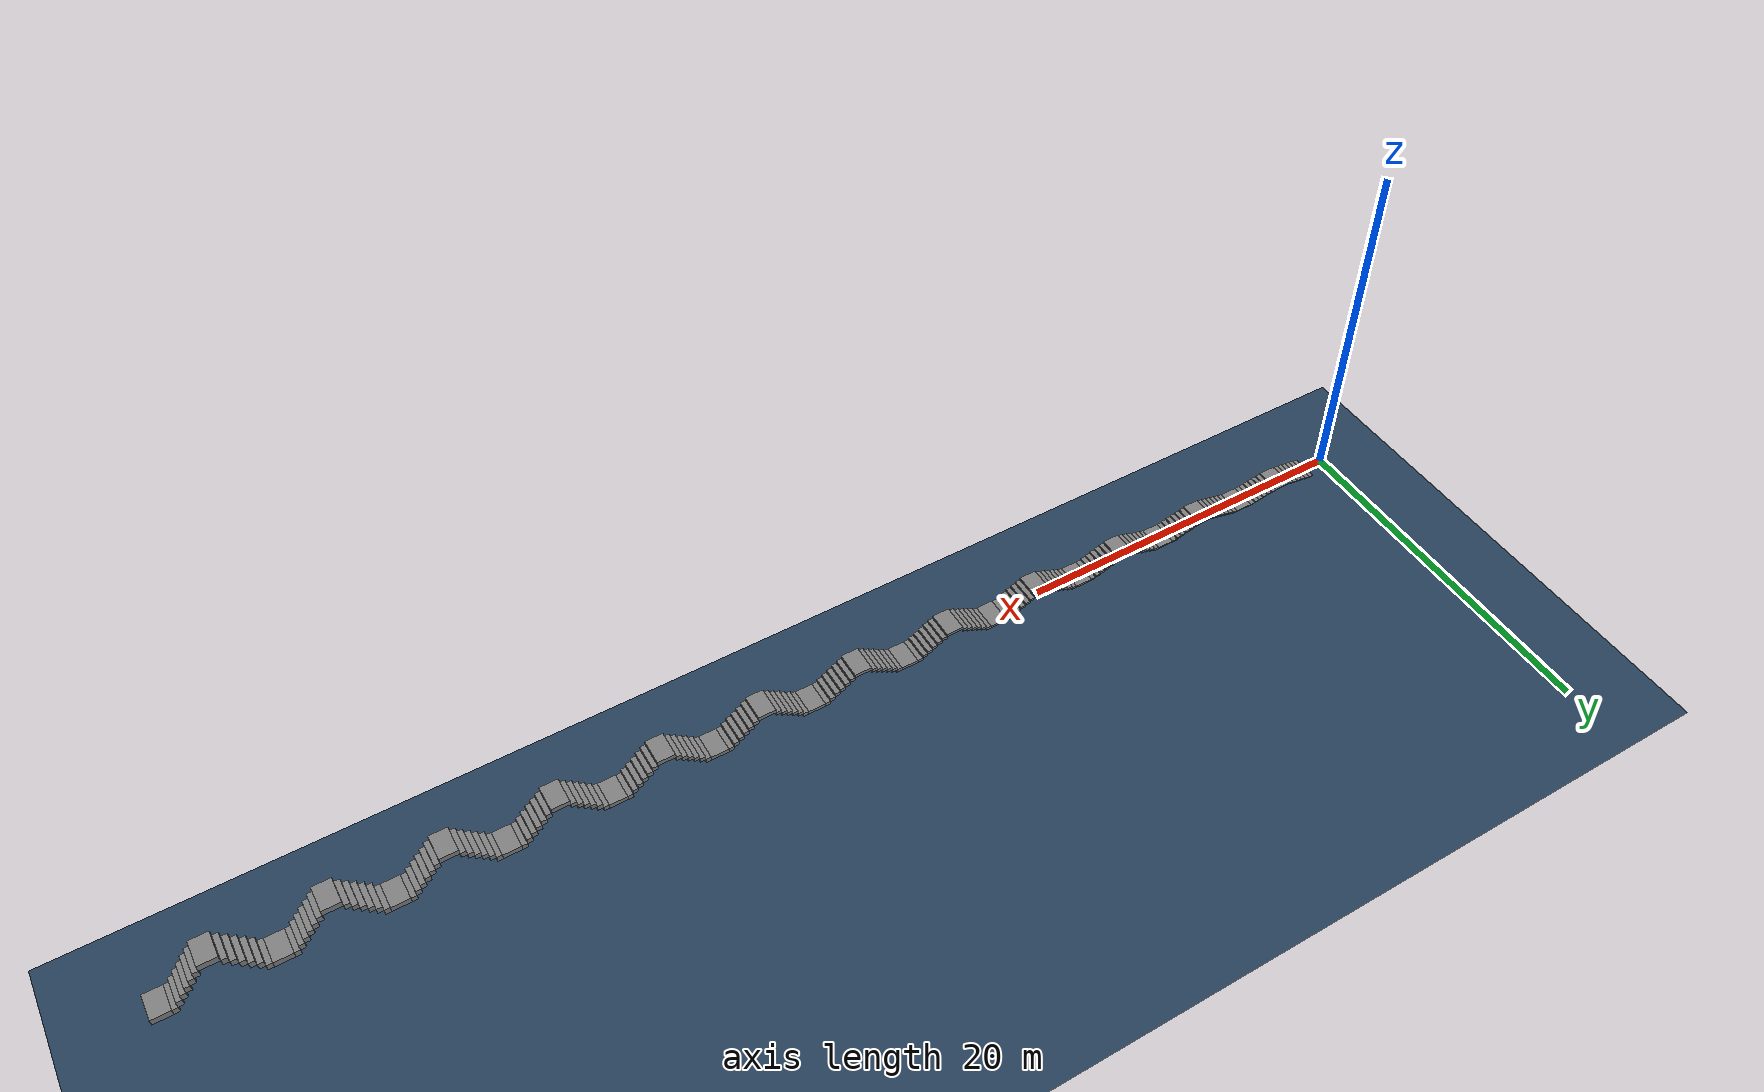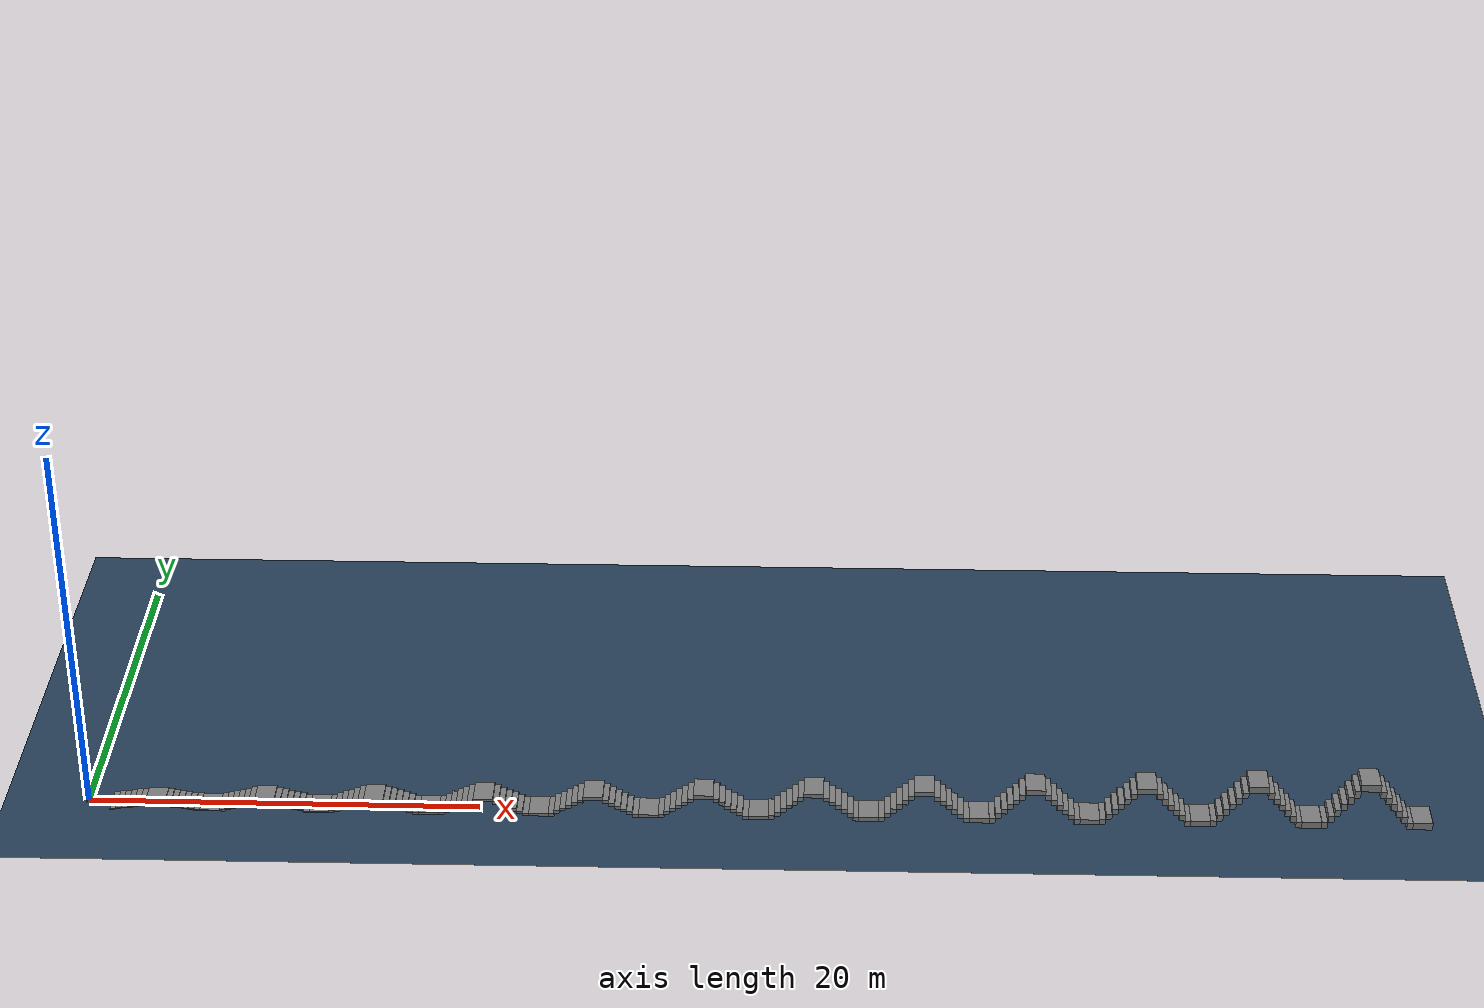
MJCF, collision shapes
<mujoco model="dog_502 scene">
  <include file="dog_502.xml"/>
  <!--Stairs series: Up 6, Down 6, Start height 0.050, Step inc 0.030, Max height 0.400. -->
  <statistic center="0 0 0.1" extent="0.8" />
  <visual>
    <headlight diffuse="0.6 0.6 0.6" ambient="0.3 0.3 0.3" specular="0 0 0" />
    <rgba haze="0.15 0.25 0.35 1" />
    <global azimuth="-130" elevation="-20" />
  </visual>
  <asset>
    <texture type="skybox" builtin="gradient" rgb1="0.3 0.5 0.7" rgb2="0 0 0" width="512" height="3072" />
    <texture type="2d" name="groundplane" builtin="checker" mark="edge" rgb1="0.2 0.3 0.4" rgb2="0.1 0.2 0.3" markrgb="0.8 0.8 0.8" width="300" height="300" />
    <material name="groundplane" texture="groundplane" texuniform="true" texrepeat="5 5" reflectance="0.0" />
  </asset>
  <worldbody>
    <light pos="0 0 1.5" dir="0 0 -1" directional="true" />
    <geom name="floor" size="0 0 0.05" type="plane" material="groundplane" />
    <geom pos="1.3 0.0 0.025" type="box" size="0.15 0.75 0.025" quat="1.0 0.0 0.0 0.0" />
    <geom pos="1.6 0.0 0.07500000000000001" type="box" size="0.15 0.75 0.025" quat="1.0 0.0 0.0 0.0" />
    <geom pos="1.9 0.0 0.125" type="box" size="0.15 0.75 0.025" quat="1.0 0.0 0.0 0.0" />
    <geom pos="2.2 0.0 0.17500000000000002" type="box" size="0.15 0.75 0.025" quat="1.0 0.0 0.0 0.0" />
    <geom pos="2.5 0.0 0.225" type="box" size="0.15 0.75 0.025" quat="1.0 0.0 0.0 0.0" />
    <geom pos="2.8 0.0 0.275" type="box" size="0.15 0.75 0.025" quat="1.0 0.0 0.0 0.0" />
    <geom pos="3.4499999999999997 0.0 0.32500000000000007" type="box" size="0.5 0.75 0.025" quat="1.0 0.0 0.0 0.0" />
    <geom pos="4.1 0.0 0.275" type="box" size="0.15 0.75 0.025" quat="1.0 0.0 0.0 0.0" />
    <geom pos="4.3999999999999995 0.0 0.22500000000000003" type="box" size="0.15 0.75 0.025" quat="1.0 0.0 0.0 0.0" />
    <geom pos="4.699999999999999 0.0 0.17500000000000002" type="box" size="0.15 0.75 0.025" quat="1.0 0.0 0.0 0.0" />
    <geom pos="5.0 0.0 0.125" type="box" size="0.15 0.75 0.025" quat="1.0 0.0 0.0 0.0" />
    <geom pos="5.3 0.0 0.07500000000000001" type="box" size="0.15 0.75 0.025" quat="1.0 0.0 0.0 0.0" />
    <geom pos="5.6 0.0 0.025000000000000022" type="box" size="0.15 0.75 0.025" quat="1.0 0.0 0.0 0.0" />
    <geom pos="6.25 0.0 0.025" type="box" size="0.5 0.75 0.025" quat="1.0 0.0 0.0 0.0" />
    <geom pos="6.898999999999999 0.0 0.04" type="box" size="0.15 0.75 0.04" quat="1.0 0.0 0.0 0.0" />
    <geom pos="7.198999999999999 0.0 0.12" type="box" size="0.15 0.75 0.04" quat="1.0 0.0 0.0 0.0" />
    <geom pos="7.498999999999999 0.0 0.2" type="box" size="0.15 0.75 0.04" quat="1.0 0.0 0.0 0.0" />
    <geom pos="7.7989999999999995 0.0 0.28" type="box" size="0.15 0.75 0.04" quat="1.0 0.0 0.0 0.0" />
    <geom pos="8.099 0.0 0.36" type="box" size="0.15 0.75 0.04" quat="1.0 0.0 0.0 0.0" />
    <geom pos="8.399 0.0 0.44" type="box" size="0.15 0.75 0.04" quat="1.0 0.0 0.0 0.0" />
    <geom pos="9.049 0.0 0.52" type="box" size="0.5 0.75 0.04" quat="1.0 0.0 0.0 0.0" />
    <geom pos="9.698999999999998 0.0 0.44" type="box" size="0.15 0.75 0.04" quat="1.0 0.0 0.0 0.0" />
    <geom pos="9.998999999999999 0.0 0.36" type="box" size="0.15 0.75 0.04" quat="1.0 0.0 0.0 0.0" />
    <geom pos="10.299 0.0 0.28" type="box" size="0.15 0.75 0.04" quat="1.0 0.0 0.0 0.0" />
    <geom pos="10.598999999999998 0.0 0.2" type="box" size="0.15 0.75 0.04" quat="1.0 0.0 0.0 0.0" />
    <geom pos="10.899 0.0 0.12" type="box" size="0.15 0.75 0.04" quat="1.0 0.0 0.0 0.0" />
    <geom pos="11.198999999999998 0.0 0.03999999999999998" type="box" size="0.15 0.75 0.04" quat="1.0 0.0 0.0 0.0" />
    <geom pos="11.849 0.0 0.04" type="box" size="0.5 0.75 0.04" quat="1.0 0.0 0.0 0.0" />
    <geom pos="12.498 0.0 0.055" type="box" size="0.15 0.75 0.055" quat="1.0 0.0 0.0 0.0" />
    <geom pos="12.797999999999998 0.0 0.165" type="box" size="0.15 0.75 0.055" quat="1.0 0.0 0.0 0.0" />
    <geom pos="13.097999999999999 0.0 0.275" type="box" size="0.15 0.75 0.055" quat="1.0 0.0 0.0 0.0" />
    <geom pos="13.397999999999998 0.0 0.385" type="box" size="0.15 0.75 0.055" quat="1.0 0.0 0.0 0.0" />
    <geom pos="13.697999999999999 0.0 0.495" type="box" size="0.15 0.75 0.055" quat="1.0 0.0 0.0 0.0" />
    <geom pos="13.997999999999998 0.0 0.605" type="box" size="0.15 0.75 0.055" quat="1.0 0.0 0.0 0.0" />
    <geom pos="14.647999999999998 0.0 0.7150000000000001" type="box" size="0.5 0.75 0.055" quat="1.0 0.0 0.0 0.0" />
    <geom pos="15.297999999999998 0.0 0.605" type="box" size="0.15 0.75 0.055" quat="1.0 0.0 0.0 0.0" />
    <geom pos="15.597999999999999 0.0 0.495" type="box" size="0.15 0.75 0.055" quat="1.0 0.0 0.0 0.0" />
    <geom pos="15.897999999999998 0.0 0.385" type="box" size="0.15 0.75 0.055" quat="1.0 0.0 0.0 0.0" />
    <geom pos="16.197999999999997 0.0 0.27499999999999997" type="box" size="0.15 0.75 0.055" quat="1.0 0.0 0.0 0.0" />
    <geom pos="16.497999999999998 0.0 0.16499999999999998" type="box" size="0.15 0.75 0.055" quat="1.0 0.0 0.0 0.0" />
    <geom pos="16.798 0.0 0.05499999999999994" type="box" size="0.15 0.75 0.055" quat="1.0 0.0 0.0 0.0" />
    <geom pos="17.448 0.0 0.055" type="box" size="0.5 0.75 0.055" quat="1.0 0.0 0.0 0.0" />
    <geom pos="18.096999999999998 0.0 0.07" type="box" size="0.15 0.75 0.07" quat="1.0 0.0 0.0 0.0" />
    <geom pos="18.397 0.0 0.21000000000000002" type="box" size="0.15 0.75 0.07" quat="1.0 0.0 0.0 0.0" />
    <geom pos="18.696999999999996 0.0 0.35000000000000003" type="box" size="0.15 0.75 0.07" quat="1.0 0.0 0.0 0.0" />
    <geom pos="18.996999999999996 0.0 0.49000000000000005" type="box" size="0.15 0.75 0.07" quat="1.0 0.0 0.0 0.0" />
    <geom pos="19.296999999999997 0.0 0.6300000000000001" type="box" size="0.15 0.75 0.07" quat="1.0 0.0 0.0 0.0" />
    <geom pos="19.596999999999998 0.0 0.77" type="box" size="0.15 0.75 0.07" quat="1.0 0.0 0.0 0.0" />
    <geom pos="20.246999999999996 0.0 0.9100000000000001" type="box" size="0.5 0.75 0.07" quat="1.0 0.0 0.0 0.0" />
    <geom pos="20.897 0.0 0.77" type="box" size="0.15 0.75 0.07" quat="1.0 0.0 0.0 0.0" />
    <geom pos="21.196999999999996 0.0 0.63" type="box" size="0.15 0.75 0.07" quat="1.0 0.0 0.0 0.0" />
    <geom pos="21.496999999999996 0.0 0.49" type="box" size="0.15 0.75 0.07" quat="1.0 0.0 0.0 0.0" />
    <geom pos="21.796999999999997 0.0 0.35" type="box" size="0.15 0.75 0.07" quat="1.0 0.0 0.0 0.0" />
    <geom pos="22.096999999999998 0.0 0.20999999999999996" type="box" size="0.15 0.75 0.07" quat="1.0 0.0 0.0 0.0" />
    <geom pos="22.397 0.0 0.06999999999999995" type="box" size="0.15 0.75 0.07" quat="1.0 0.0 0.0 0.0" />
    <geom pos="23.046999999999997 0.0 0.07" type="box" size="0.5 0.75 0.07" quat="1.0 0.0 0.0 0.0" />
    <geom pos="23.695999999999998 0.0 0.085" type="box" size="0.15 0.75 0.085" quat="1.0 0.0 0.0 0.0" />
    <geom pos="23.996 0.0 0.255" type="box" size="0.15 0.75 0.085" quat="1.0 0.0 0.0 0.0" />
    <geom pos="24.295999999999996 0.0 0.42500000000000004" type="box" size="0.15 0.75 0.085" quat="1.0 0.0 0.0 0.0" />
    <geom pos="24.595999999999997 0.0 0.5950000000000001" type="box" size="0.15 0.75 0.085" quat="1.0 0.0 0.0 0.0" />
    <geom pos="24.895999999999997 0.0 0.765" type="box" size="0.15 0.75 0.085" quat="1.0 0.0 0.0 0.0" />
    <geom pos="25.195999999999998 0.0 0.935" type="box" size="0.15 0.75 0.085" quat="1.0 0.0 0.0 0.0" />
    <geom pos="25.845999999999997 0.0 1.105" type="box" size="0.5 0.75 0.085" quat="1.0 0.0 0.0 0.0" />
    <geom pos="26.495999999999995 0.0 0.935" type="box" size="0.15 0.75 0.085" quat="1.0 0.0 0.0 0.0" />
    <geom pos="26.795999999999996 0.0 0.765" type="box" size="0.15 0.75 0.085" quat="1.0 0.0 0.0 0.0" />
    <geom pos="27.095999999999997 0.0 0.595" type="box" size="0.15 0.75 0.085" quat="1.0 0.0 0.0 0.0" />
    <geom pos="27.395999999999997 0.0 0.42500000000000004" type="box" size="0.15 0.75 0.085" quat="1.0 0.0 0.0 0.0" />
    <geom pos="27.695999999999998 0.0 0.255" type="box" size="0.15 0.75 0.085" quat="1.0 0.0 0.0 0.0" />
    <geom pos="27.995999999999995 0.0 0.08499999999999996" type="box" size="0.15 0.75 0.085" quat="1.0 0.0 0.0 0.0" />
    <geom pos="28.645999999999997 0.0 0.085" type="box" size="0.5 0.75 0.085" quat="1.0 0.0 0.0 0.0" />
    <geom pos="29.294999999999998 0.0 0.1" type="box" size="0.15 0.75 0.1" quat="1.0 0.0 0.0 0.0" />
    <geom pos="29.595 0.0 0.30000000000000004" type="box" size="0.15 0.75 0.1" quat="1.0 0.0 0.0 0.0" />
    <geom pos="29.894999999999996 0.0 0.5" type="box" size="0.15 0.75 0.1" quat="1.0 0.0 0.0 0.0" />
    <geom pos="30.194999999999997 0.0 0.7000000000000001" type="box" size="0.15 0.75 0.1" quat="1.0 0.0 0.0 0.0" />
    <geom pos="30.494999999999997 0.0 0.9" type="box" size="0.15 0.75 0.1" quat="1.0 0.0 0.0 0.0" />
    <geom pos="30.794999999999998 0.0 1.1" type="box" size="0.15 0.75 0.1" quat="1.0 0.0 0.0 0.0" />
    <geom pos="31.444999999999997 0.0 1.3000000000000003" type="box" size="0.5 0.75 0.1" quat="1.0 0.0 0.0 0.0" />
    <geom pos="32.095 0.0 1.1" type="box" size="0.15 0.75 0.1" quat="1.0 0.0 0.0 0.0" />
    <geom pos="32.394999999999996 0.0 0.9000000000000001" type="box" size="0.15 0.75 0.1" quat="1.0 0.0 0.0 0.0" />
    <geom pos="32.695 0.0 0.7000000000000001" type="box" size="0.15 0.75 0.1" quat="1.0 0.0 0.0 0.0" />
    <geom pos="32.995 0.0 0.5" type="box" size="0.15 0.75 0.1" quat="1.0 0.0 0.0 0.0" />
    <geom pos="33.294999999999995 0.0 0.30000000000000004" type="box" size="0.15 0.75 0.1" quat="1.0 0.0 0.0 0.0" />
    <geom pos="33.595 0.0 0.10000000000000009" type="box" size="0.15 0.75 0.1" quat="1.0 0.0 0.0 0.0" />
    <geom pos="34.245 0.0 0.1" type="box" size="0.5 0.75 0.1" quat="1.0 0.0 0.0 0.0" />
    <geom pos="34.89399999999999 0.0 0.115" type="box" size="0.15 0.75 0.115" quat="1.0 0.0 0.0 0.0" />
    <geom pos="35.193999999999996 0.0 0.34500000000000003" type="box" size="0.15 0.75 0.115" quat="1.0 0.0 0.0 0.0" />
    <geom pos="35.49399999999999 0.0 0.5750000000000001" type="box" size="0.15 0.75 0.115" quat="1.0 0.0 0.0 0.0" />
    <geom pos="35.794 0.0 0.805" type="box" size="0.15 0.75 0.115" quat="1.0 0.0 0.0 0.0" />
    <geom pos="36.093999999999994 0.0 1.0350000000000001" type="box" size="0.15 0.75 0.115" quat="1.0 0.0 0.0 0.0" />
    <geom pos="36.39399999999999 0.0 1.2650000000000001" type="box" size="0.15 0.75 0.115" quat="1.0 0.0 0.0 0.0" />
    <geom pos="37.044 0.0 1.495" type="box" size="0.5 0.75 0.115" quat="1.0 0.0 0.0 0.0" />
    <geom pos="37.693999999999996 0.0 1.2650000000000001" type="box" size="0.15 0.75 0.115" quat="1.0 0.0 0.0 0.0" />
    <geom pos="37.99399999999999 0.0 1.0350000000000001" type="box" size="0.15 0.75 0.115" quat="1.0 0.0 0.0 0.0" />
    <geom pos="38.294 0.0 0.8050000000000002" type="box" size="0.15 0.75 0.115" quat="1.0 0.0 0.0 0.0" />
    <geom pos="38.593999999999994 0.0 0.5750000000000001" type="box" size="0.15 0.75 0.115" quat="1.0 0.0 0.0 0.0" />
    <geom pos="38.89399999999999 0.0 0.3450000000000001" type="box" size="0.15 0.75 0.115" quat="1.0 0.0 0.0 0.0" />
    <geom pos="39.193999999999996 0.0 0.11499999999999999" type="box" size="0.15 0.75 0.115" quat="1.0 0.0 0.0 0.0" />
    <geom pos="39.843999999999994 0.0 0.115" type="box" size="0.5 0.75 0.115" quat="1.0 0.0 0.0 0.0" />
    <geom pos="40.49299999999999 0.0 0.13" type="box" size="0.15 0.75 0.13" quat="1.0 0.0 0.0 0.0" />
    <geom pos="40.79299999999999 0.0 0.39" type="box" size="0.15 0.75 0.13" quat="1.0 0.0 0.0 0.0" />
    <geom pos="41.09299999999999 0.0 0.65" type="box" size="0.15 0.75 0.13" quat="1.0 0.0 0.0 0.0" />
    <geom pos="41.392999999999994 0.0 0.91" type="box" size="0.15 0.75 0.13" quat="1.0 0.0 0.0 0.0" />
    <geom pos="41.69299999999999 0.0 1.17" type="box" size="0.15 0.75 0.13" quat="1.0 0.0 0.0 0.0" />
    <geom pos="41.99299999999999 0.0 1.4300000000000002" type="box" size="0.15 0.75 0.13" quat="1.0 0.0 0.0 0.0" />
    <geom pos="42.642999999999994 0.0 1.69" type="box" size="0.5 0.75 0.13" quat="1.0 0.0 0.0 0.0" />
    <geom pos="43.29299999999999 0.0 1.4300000000000002" type="box" size="0.15 0.75 0.13" quat="1.0 0.0 0.0 0.0" />
    <geom pos="43.59299999999999 0.0 1.1700000000000002" type="box" size="0.15 0.75 0.13" quat="1.0 0.0 0.0 0.0" />
    <geom pos="43.892999999999994 0.0 0.9100000000000001" type="box" size="0.15 0.75 0.13" quat="1.0 0.0 0.0 0.0" />
    <geom pos="44.19299999999999 0.0 0.6500000000000001" type="box" size="0.15 0.75 0.13" quat="1.0 0.0 0.0 0.0" />
    <geom pos="44.49299999999999 0.0 0.3900000000000001" type="box" size="0.15 0.75 0.13" quat="1.0 0.0 0.0 0.0" />
    <geom pos="44.79299999999999 0.0 0.13000000000000012" type="box" size="0.15 0.75 0.13" quat="1.0 0.0 0.0 0.0" />
    <geom pos="45.44299999999999 0.0 0.13" type="box" size="0.5 0.75 0.13" quat="1.0 0.0 0.0 0.0" />
    <geom pos="46.091999999999985 0.0 0.145" type="box" size="0.15 0.75 0.145" quat="1.0 0.0 0.0 0.0" />
    <geom pos="46.39199999999999 0.0 0.43499999999999994" type="box" size="0.15 0.75 0.145" quat="1.0 0.0 0.0 0.0" />
    <geom pos="46.691999999999986 0.0 0.725" type="box" size="0.15 0.75 0.145" quat="1.0 0.0 0.0 0.0" />
    <geom pos="46.99199999999999 0.0 1.015" type="box" size="0.15 0.75 0.145" quat="1.0 0.0 0.0 0.0" />
    <geom pos="47.29199999999999 0.0 1.305" type="box" size="0.15 0.75 0.145" quat="1.0 0.0 0.0 0.0" />
    <geom pos="47.591999999999985 0.0 1.595" type="box" size="0.15 0.75 0.145" quat="1.0 0.0 0.0 0.0" />
    <geom pos="48.24199999999999 0.0 1.8849999999999998" type="box" size="0.5 0.75 0.145" quat="1.0 0.0 0.0 0.0" />
    <geom pos="48.89199999999999 0.0 1.5949999999999998" type="box" size="0.15 0.75 0.145" quat="1.0 0.0 0.0 0.0" />
    <geom pos="49.191999999999986 0.0 1.3049999999999997" type="box" size="0.15 0.75 0.145" quat="1.0 0.0 0.0 0.0" />
    <geom pos="49.49199999999999 0.0 1.0149999999999997" type="box" size="0.15 0.75 0.145" quat="1.0 0.0 0.0 0.0" />
    <geom pos="49.79199999999999 0.0 0.7249999999999999" type="box" size="0.15 0.75 0.145" quat="1.0 0.0 0.0 0.0" />
    <geom pos="50.091999999999985 0.0 0.43499999999999983" type="box" size="0.15 0.75 0.145" quat="1.0 0.0 0.0 0.0" />
    <geom pos="50.39199999999999 0.0 0.1449999999999998" type="box" size="0.15 0.75 0.145" quat="1.0 0.0 0.0 0.0" />
    <geom pos="51.04199999999999 0.0 0.145" type="box" size="0.5 0.75 0.145" quat="1.0 0.0 0.0 0.0" />
    <geom pos="51.69099999999998 0.0 0.16" type="box" size="0.15 0.75 0.16" quat="1.0 0.0 0.0 0.0" />
    <geom pos="51.990999999999985 0.0 0.48" type="box" size="0.15 0.75 0.16" quat="1.0 0.0 0.0 0.0" />
    <geom pos="52.29099999999998 0.0 0.8" type="box" size="0.15 0.75 0.16" quat="1.0 0.0 0.0 0.0" />
    <geom pos="52.59099999999999 0.0 1.12" type="box" size="0.15 0.75 0.16" quat="1.0 0.0 0.0 0.0" />
    <geom pos="52.890999999999984 0.0 1.44" type="box" size="0.15 0.75 0.16" quat="1.0 0.0 0.0 0.0" />
    <geom pos="53.19099999999998 0.0 1.76" type="box" size="0.15 0.75 0.16" quat="1.0 0.0 0.0 0.0" />
    <geom pos="53.84099999999999 0.0 2.08" type="box" size="0.5 0.75 0.16" quat="1.0 0.0 0.0 0.0" />
    <geom pos="54.490999999999985 0.0 1.76" type="box" size="0.15 0.75 0.16" quat="1.0 0.0 0.0 0.0" />
    <geom pos="54.79099999999998 0.0 1.44" type="box" size="0.15 0.75 0.16" quat="1.0 0.0 0.0 0.0" />
    <geom pos="55.09099999999999 0.0 1.12" type="box" size="0.15 0.75 0.16" quat="1.0 0.0 0.0 0.0" />
    <geom pos="55.390999999999984 0.0 0.8" type="box" size="0.15 0.75 0.16" quat="1.0 0.0 0.0 0.0" />
    <geom pos="55.69099999999998 0.0 0.48" type="box" size="0.15 0.75 0.16" quat="1.0 0.0 0.0 0.0" />
    <geom pos="55.990999999999985 0.0 0.15999999999999992" type="box" size="0.15 0.75 0.16" quat="1.0 0.0 0.0 0.0" />
    <geom pos="56.640999999999984 0.0 0.16" type="box" size="0.5 0.75 0.16" quat="1.0 0.0 0.0 0.0" />
    <geom pos="57.28999999999998 0.0 0.175" type="box" size="0.15 0.75 0.175" quat="1.0 0.0 0.0 0.0" />
    <geom pos="57.58999999999998 0.0 0.5249999999999999" type="box" size="0.15 0.75 0.175" quat="1.0 0.0 0.0 0.0" />
    <geom pos="57.88999999999998 0.0 0.875" type="box" size="0.15 0.75 0.175" quat="1.0 0.0 0.0 0.0" />
    <geom pos="58.18999999999998 0.0 1.2249999999999999" type="box" size="0.15 0.75 0.175" quat="1.0 0.0 0.0 0.0" />
    <geom pos="58.48999999999998 0.0 1.575" type="box" size="0.15 0.75 0.175" quat="1.0 0.0 0.0 0.0" />
    <geom pos="58.78999999999998 0.0 1.9249999999999998" type="box" size="0.15 0.75 0.175" quat="1.0 0.0 0.0 0.0" />
    <geom pos="59.43999999999998 0.0 2.2749999999999995" type="box" size="0.5 0.75 0.175" quat="1.0 0.0 0.0 0.0" />
    <geom pos="60.08999999999998 0.0 1.9249999999999996" type="box" size="0.15 0.75 0.175" quat="1.0 0.0 0.0 0.0" />
    <geom pos="60.38999999999998 0.0 1.5749999999999997" type="box" size="0.15 0.75 0.175" quat="1.0 0.0 0.0 0.0" />
    <geom pos="60.68999999999998 0.0 1.2249999999999996" type="box" size="0.15 0.75 0.175" quat="1.0 0.0 0.0 0.0" />
    <geom pos="60.98999999999998 0.0 0.8749999999999998" type="box" size="0.15 0.75 0.175" quat="1.0 0.0 0.0 0.0" />
    <geom pos="61.28999999999998 0.0 0.5249999999999997" type="box" size="0.15 0.75 0.175" quat="1.0 0.0 0.0 0.0" />
    <geom pos="61.58999999999998 0.0 0.1749999999999996" type="box" size="0.15 0.75 0.175" quat="1.0 0.0 0.0 0.0" />
    <geom pos="62.23999999999998 0.0 0.175" type="box" size="0.5 0.75 0.175" quat="1.0 0.0 0.0 0.0" />
    <geom pos="62.888999999999974 0.0 0.19" type="box" size="0.15 0.75 0.19" quat="1.0 0.0 0.0 0.0" />
    <geom pos="63.18899999999998 0.0 0.5700000000000001" type="box" size="0.15 0.75 0.19" quat="1.0 0.0 0.0 0.0" />
    <geom pos="63.488999999999976 0.0 0.95" type="box" size="0.15 0.75 0.19" quat="1.0 0.0 0.0 0.0" />
    <geom pos="63.78899999999998 0.0 1.33" type="box" size="0.15 0.75 0.19" quat="1.0 0.0 0.0 0.0" />
    <geom pos="64.08899999999997 0.0 1.71" type="box" size="0.15 0.75 0.19" quat="1.0 0.0 0.0 0.0" />
    <geom pos="64.38899999999998 0.0 2.09" type="box" size="0.15 0.75 0.19" quat="1.0 0.0 0.0 0.0" />
    <geom pos="65.03899999999997 0.0 2.47" type="box" size="0.5 0.75 0.19" quat="1.0 0.0 0.0 0.0" />
    <geom pos="65.68899999999998 0.0 2.0900000000000003" type="box" size="0.15 0.75 0.19" quat="1.0 0.0 0.0 0.0" />
    <geom pos="65.98899999999998 0.0 1.7100000000000004" type="box" size="0.15 0.75 0.19" quat="1.0 0.0 0.0 0.0" />
    <geom pos="66.28899999999997 0.0 1.3300000000000003" type="box" size="0.15 0.75 0.19" quat="1.0 0.0 0.0 0.0" />
    <geom pos="66.58899999999997 0.0 0.9500000000000002" type="box" size="0.15 0.75 0.19" quat="1.0 0.0 0.0 0.0" />
    <geom pos="66.88899999999998 0.0 0.5700000000000003" type="box" size="0.15 0.75 0.19" quat="1.0 0.0 0.0 0.0" />
    <geom pos="67.18899999999998 0.0 0.1900000000000004" type="box" size="0.15 0.75 0.19" quat="1.0 0.0 0.0 0.0" />
    <geom pos="67.83899999999997 0.0 0.19" type="box" size="0.5 0.75 0.19" quat="1.0 0.0 0.0 0.0" />
  </worldbody>
</mujoco>

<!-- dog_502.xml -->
<mujoco model="dog_502_description">
  <compiler angle="radian" meshdir="../../../dog_502_description/meshes"/>

  <default>
    <joint damping="0.01" armature="0.01" frictionloss="0.02"/>
    <geom condim="3" friction="0.8 0.02 0.01"/>
    <default class="visual">
      <geom type="mesh" contype="0" conaffinity="0" group="2"/>
    </default>
  </default>

  <asset>
    <material name="light_grey" rgba="0.75294 0.75294 0.75294 1"/>
    <material name="black" rgba="0.1 0.1 0.1 1"/>
    <material name="red" rgba="1.0 0.0 0.0 1"/>

    <mesh name="base_link_mesh" file="base_link.STL"/>
    <mesh name="FL_hip_mesh" file="FL_hip.STL"/>
    <mesh name="FR_hip_mesh" file="FR_hip.STL"/>
    <mesh name="RL_hip_mesh" file="RL_hip.STL"/>
    <mesh name="RR_hip_mesh" file="RR_hip.STL"/>
    <mesh name="FL_thigh_mesh" file="FL_thigh.STL"/>
    <mesh name="FR_thigh_mesh" file="FR_thigh.STL"/>
    <mesh name="RL_thigh_mesh" file="RL_thigh.STL"/>
    <mesh name="RR_thigh_mesh" file="RR_thigh.STL"/>
    <mesh name="FL_calf_mesh" file="FL_calf.STL"/>
    <mesh name="FR_calf_mesh" file="FR_calf.STL"/>
    <mesh name="RL_calf_mesh" file="RL_calf.STL"/>
    <mesh name="RR_calf_mesh" file="RR_calf.STL"/>
  </asset>

  <worldbody>
    <body name="base" pos="0 0 0.31">
      <inertial pos="0.000037 0.001297 -0.002295" mass="4.142449" diaginertia="0.013374 0.031506 0.039388"/>
      <freejoint name="root"/>
      <geom mesh="base_link_mesh" material="light_grey" class="visual"/>
      <geom name="base_collision" type="box" size="0.15 0.075 0.04"/>

      <body name="camera" pos="0.255 0 0.04185" quat="0.984811 0 0.173672 0">
        <geom name="camera_visual" type="box" size="0.0125 0.06 0.0145" material="black" contype="0" conaffinity="0" group="2"/>
      </body>

      <body name="FL_hip" pos="0.1767 0.05 0">
        <inertial pos="-0.00457081 -0.00969999 0.0002578" mass="0.50149755" diaginertia="0.00011158 0.00021376 0.00016301"/>
        <joint name="FL_hip_joint" axis="1 0 0" range="-0.837758 0.837758" actuatorfrcrange="-17 17"/>
        <geom mesh="FL_hip_mesh" material="light_grey" class="visual"/>
        <geom name="FL_hip_collision" type="box" size="0.025 0.04 0.03"/>
        <body name="FL_thigh" pos="0 0.0684 0">
          <inertial pos="-0.00194747 -0.02547458 -0.01388663" mass="0.64867804" diaginertia="0.00138293 0.00137329 0.00032193"/>
          <joint name="FL_thigh_joint" axis="0 1 0" range="-1.5708 3.49066" actuatorfrcrange="-17 17"/>
          <geom mesh="FL_thigh_mesh" material="light_grey" class="visual"/>
          <geom name="FL_thigh_collision" type="box" pos="0 0 -0.09" quat="0.707107 0 0.707107 0" size="0.09 0.015 0.0175"/>
          <body name="FL_calf" pos="0 0 -0.18">
            <inertial pos="0.01310003 -0.00009903 -0.09935467" mass="0.06024443" diaginertia="0.0003599 0.00036988 0.00001166"/>
            <joint name="FL_calf_joint" axis="0 1 0" range="-2.72271 -0.837758" actuatorfrcrange="-17 17"/>
            <geom mesh="FL_calf_mesh" material="light_grey" class="visual"/>
            <geom name="FL_calf_collision_0" type="box" pos="0.013 0 -0.053" quat="0.988392 0 -0.151909 0" size="0.00825 0.0075 0.05106"/>
            <geom name="FL_calf_collision_1" type="box" pos="0.0285 0 -0.119" quat="0.997889 0 -0.064954 0" size="0.009 0.0075 0.03"/>
            <geom name="FL_calf_collision_2" type="box" pos="0.02021 0 -0.15878" quat="0.968912 0 0.247404 0" size="0.0125 0.0075 0.02"/>
            <geom name="FL_calf_collision_3" type="box" pos="0.03 0 -0.16" quat="0.998750 0 0.049979 0" size="0.01 0.0075 0.015"/>
            <body name="FL_foot" pos="0 0 -0.18">
              <inertial pos="0 0 0" mass="0.04" diaginertia="0.0000096 0.0000096 0.0000096"/>
              <geom name="FL_foot_visual" type="sphere" size="0.01" material="red" contype="0" conaffinity="0" group="2"/>
              <geom name="FL_foot_collision" type="sphere" pos="0.015 0 0" size="0.0225"/>
            </body>
          </body>
        </body>
      </body>

      <body name="FR_hip" pos="0.1767 -0.05 0">
        <inertial pos="-0.00444412 0.00969999 0.00054368" mass="0.50149755" diaginertia="0.00011122 0.00021421 0.00016383"/>
        <joint name="FR_hip_joint" axis="1 0 0" range="-0.837758 0.837758" actuatorfrcrange="-17 17"/>
        <geom mesh="FR_hip_mesh" material="light_grey" class="visual"/>
        <geom name="FR_hip_collision" type="box" size="0.025 0.04 0.03"/>
        <body name="FR_thigh" pos="0 -0.0684 0">
          <inertial pos="-0.00096707 0.02548196 -0.01388686" mass="0.64867934" diaginertia="0.00138275 0.00137516 0.00032358"/>
          <joint name="FR_thigh_joint" axis="0 1 0" range="-1.5708 3.49066" actuatorfrcrange="-17 17"/>
          <geom mesh="FR_thigh_mesh" material="light_grey" class="visual"/>
          <geom name="FR_thigh_collision" type="box" pos="0 0 -0.09" quat="0.707107 0 0.707107 0" size="0.09 0.015 0.0175"/>
          <body name="FR_calf" pos="0 0 -0.18">
            <inertial pos="0.01310003 0.00010097 -0.09935467" mass="0.06024443" diaginertia="0.0003599 0.00036988 0.00001166"/>
            <joint name="FR_calf_joint" axis="0 1 0" range="-2.72271 -0.837758" actuatorfrcrange="-17 17"/>
            <geom mesh="FR_calf_mesh" material="light_grey" class="visual"/>
            <geom name="FR_calf_collision_0" type="box" pos="0.013 0 -0.053" quat="0.988392 0 -0.151909 0" size="0.00825 0.0075 0.05106"/>
            <geom name="FR_calf_collision_1" type="box" pos="0.0285 0 -0.119" quat="0.997889 0 -0.064954 0" size="0.009 0.0075 0.03"/>
            <geom name="FR_calf_collision_2" type="box" pos="0.02021 0 -0.15878" quat="0.968912 0 0.247404 0" size="0.0125 0.0075 0.02"/>
            <geom name="FR_calf_collision_3" type="box" pos="0.03 0 -0.16" quat="0.998750 0 0.049979 0" size="0.01 0.0075 0.015"/>
            <body name="FR_foot" pos="0 0 -0.18">
              <inertial pos="0 0 0" mass="0.04" diaginertia="0.0000096 0.0000096 0.0000096"/>
              <geom name="FR_foot_visual" type="sphere" size="0.01" material="red" contype="0" conaffinity="0" group="2"/>
              <geom name="FR_foot_collision" type="sphere" pos="0.015 0 0" size="0.0225"/>
            </body>
          </body>
        </body>
      </body>

      <body name="RL_hip" pos="-0.1767 0.05 0">
        <inertial pos="0.00329874 -0.00969999 0.00094432" mass="0.50149755" diaginertia="0.00011271 0.00021836 0.00016649"/>
        <joint name="RL_hip_joint" axis="1 0 0" range="-0.837758 0.837758" actuatorfrcrange="-17 17"/>
        <geom mesh="RL_hip_mesh" material="light_grey" class="visual"/>
        <geom name="RL_hip_collision" type="box" size="0.025 0.04 0.03"/>
        <body name="RL_thigh" pos="0 0.0684 0">
          <inertial pos="-0.00120536 -0.02547458 -0.01523822" mass="0.64867804" diaginertia="0.00135600 0.00134928 0.00032485"/>
          <joint name="RL_thigh_joint" axis="0 1 0" range="-1.5708 3.49066" actuatorfrcrange="-17 17"/>
          <geom mesh="RL_thigh_mesh" material="light_grey" class="visual"/>
          <geom name="RL_thigh_collision" type="box" pos="0 0 -0.09" quat="0.707107 0 0.707107 0" size="0.09 0.015 0.0175"/>
          <body name="RL_calf" pos="0 0 -0.18">
            <inertial pos="0.01310003 -0.00009903 -0.09935467" mass="0.06024443" diaginertia="0.0003599 0.00036988 0.00001166"/>
            <joint name="RL_calf_joint" axis="0 1 0" range="-2.72271 -0.837758" actuatorfrcrange="-17 17"/>
            <geom mesh="RL_calf_mesh" material="light_grey" class="visual"/>
            <geom name="RL_calf_collision_0" type="box" pos="0.013 0 -0.053" quat="0.988392 0 -0.151909 0" size="0.00825 0.0075 0.05106"/>
            <geom name="RL_calf_collision_1" type="box" pos="0.0285 0 -0.119" quat="0.997889 0 -0.064954 0" size="0.009 0.0075 0.03"/>
            <geom name="RL_calf_collision_2" type="box" pos="0.02021 0 -0.15878" quat="0.968912 0 0.247404 0" size="0.0125 0.0075 0.02"/>
            <geom name="RL_calf_collision_3" type="box" pos="0.03 0 -0.16" quat="0.998750 0 0.049979 0" size="0.01 0.0075 0.015"/>
            <body name="RL_foot" pos="0 0 -0.18">
              <inertial pos="0 0 0" mass="0.04" diaginertia="0.0000096 0.0000096 0.0000096"/>
              <geom name="RL_foot_visual" type="sphere" size="0.01" material="red" contype="0" conaffinity="0" group="2"/>
              <geom name="RL_foot_collision" type="sphere" pos="0.015 0 0" size="0.0225"/>
            </body>
          </body>
        </body>
      </body>

      <body name="RR_hip" pos="-0.1767 -0.05 0">
        <inertial pos="0.00444412 0.00969999 -0.00054368" mass="0.50149755" diaginertia="0.00011122 0.00021421 0.00016383"/>
        <joint name="RR_hip_joint" axis="1 0 0" range="-0.837758 0.837758" actuatorfrcrange="-17 17"/>
        <geom mesh="RR_hip_mesh" material="light_grey" class="visual"/>
        <geom name="RR_hip_collision" type="box" size="0.025 0.04 0.03"/>
        <body name="RR_thigh" pos="0 -0.0684 0">
          <inertial pos="-0.00212669 0.02547451 -0.01490311" mass="0.64867934" diaginertia="0.00136777 0.00135386 0.00031766"/>
          <joint name="RR_thigh_joint" axis="0 1 0" range="-1.5708 3.49066" actuatorfrcrange="-17 17"/>
          <geom mesh="RR_thigh_mesh" material="light_grey" class="visual"/>
          <geom name="RR_thigh_collision" type="box" pos="0 0 -0.09" quat="0.707107 0 0.707107 0" size="0.09 0.015 0.0175"/>
          <body name="RR_calf" pos="0 0 -0.18">
            <inertial pos="0.01310003 0.00010097 -0.09935467" mass="0.06024443" diaginertia="0.0003599 0.00036988 0.00001166"/>
            <joint name="RR_calf_joint" axis="0 1 0" range="-2.72271 -0.837758" actuatorfrcrange="-17 17"/>
            <geom mesh="RR_calf_mesh" material="light_grey" class="visual"/>
            <geom name="RR_calf_collision_0" type="box" pos="0.013 0 -0.053" quat="0.988392 0 -0.151909 0" size="0.00825 0.0075 0.05106"/>
            <geom name="RR_calf_collision_1" type="box" pos="0.0285 0 -0.119" quat="0.997889 0 -0.064954 0" size="0.009 0.0075 0.03"/>
            <geom name="RR_calf_collision_2" type="box" pos="0.02021 0 -0.15878" quat="0.968912 0 0.247404 0" size="0.0125 0.0075 0.02"/>
            <geom name="RR_calf_collision_3" type="box" pos="0.03 0 -0.16" quat="0.998750 0 0.049979 0" size="0.01 0.0075 0.015"/>
            <body name="RR_foot" pos="0 0 -0.18">
              <inertial pos="0 0 0" mass="0.04" diaginertia="0.0000096 0.0000096 0.0000096"/>
              <geom name="RR_foot_visual" type="sphere" size="0.01" material="red" contype="0" conaffinity="0" group="2"/>
              <geom name="RR_foot_collision" type="sphere" pos="0.015 0 0" size="0.0225"/>
            </body>
          </body>
        </body>
      </body>
    </body>
  </worldbody>

  <actuator>
    <motor name="FL_hip" joint="FL_hip_joint" ctrllimited="true" ctrlrange="-17 17"/>
    <motor name="FL_thigh" joint="FL_thigh_joint" ctrllimited="true" ctrlrange="-17 17"/>
    <motor name="FL_calf" joint="FL_calf_joint" ctrllimited="true" ctrlrange="-17 17"/>
    <motor name="FR_hip" joint="FR_hip_joint" ctrllimited="true" ctrlrange="-17 17"/>
    <motor name="FR_thigh" joint="FR_thigh_joint" ctrllimited="true" ctrlrange="-17 17"/>
    <motor name="FR_calf" joint="FR_calf_joint" ctrllimited="true" ctrlrange="-17 17"/>
    <motor name="RL_hip" joint="RL_hip_joint" ctrllimited="true" ctrlrange="-17 17"/>
    <motor name="RL_thigh" joint="RL_thigh_joint" ctrllimited="true" ctrlrange="-17 17"/>
    <motor name="RL_calf" joint="RL_calf_joint" ctrllimited="true" ctrlrange="-17 17"/>
    <motor name="RR_hip" joint="RR_hip_joint" ctrllimited="true" ctrlrange="-17 17"/>
    <motor name="RR_thigh" joint="RR_thigh_joint" ctrllimited="true" ctrlrange="-17 17"/>
    <motor name="RR_calf" joint="RR_calf_joint" ctrllimited="true" ctrlrange="-17 17"/>
  </actuator>
</mujoco>
